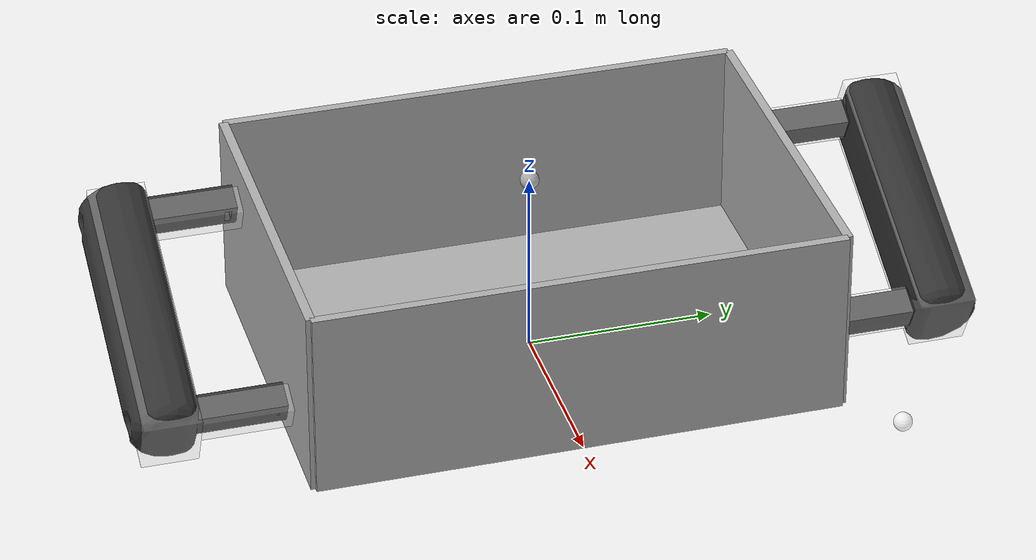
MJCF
<mujoco model="lab_box_handles_v1">
  <default>
    <default class="visual">
      <geom group="1" type="mesh" contype="0" conaffinity="0" density="100"/>
    </default>
    <default class="collision">
      <geom group="0" type="mesh" density="100" solimp="0.95 0.98 0.001" solref="0.004 1" rgba="1 1 1 0.25"/>
    </default>
  </default>
  <asset>
    <mesh file="meshes/handle.obj" name="handle"/>
    <mesh file="meshes/handle_mirror.obj" name="handle_mirror"/>
  </asset>
  <worldbody>
    <body>
      <body name="object">
        <geom name="bottom" type="box" size="0.098425 0.1397 0.0025" pos="0 0 0.0025" rgba="0.7 0.7 0.7 1" class="visual"/>
        <geom name="left_wall" type="box" size="0.098425 0.0025 0.0508" pos="0 -0.1397 0.0508" rgba="0.7 0.7 0.7 1" class="visual"/>
        <geom name="right_wall" type="box" size="0.098425 0.0025 0.0508" pos="0 0.1397 0.0508" rgba="0.7 0.7 0.7 1" class="visual"/>
        <geom name="front_wall" type="box" size="0.0025 0.1397 0.0508" pos="-0.098425 0 0.0508" rgba="0.7 0.7 0.7 1" class="visual"/>
        <geom name="back_wall" type="box" size="0.0025 0.1397 0.0508" pos="0.098425 0 0.0508" rgba="0.7 0.7 0.7 1" class="visual"/>
        <geom name="bottom_coll" type="box" size="0.098425 0.1397 0.0025" pos="0 0 0.0025" rgba="0.7 0.7 0.7 1" class="collision"/>
        <geom name="left_wall_coll" type="box" size="0.098425 0.0025 0.0508" pos="0 -0.1397 0.0508" rgba="0.7 0.7 0.7 1" class="collision"/>
        <geom name="right_wall_coll" type="box" size="0.098425 0.0025 0.0508" pos="0 0.1397 0.0508" rgba="0.7 0.7 0.7 1" class="collision"/>
        <geom name="front_wall_coll" type="box" size="0.0025 0.1397 0.0508" pos="-0.098425 0 0.0508" rgba="0.7 0.7 0.7 1" class="collision"/>
        <geom name="back_wall_coll" type="box" size="0.0025 0.1397 0.0508" pos="0.098425 0 0.0508" rgba="0.7 0.7 0.7 1" class="collision"/>
        <body name="handle_1" pos="0 0.21 0.0508" quat="0.9743701 0 0.2249511 0">
          <geom mesh="handle" class="visual" rgba="0.2 0.2 0.2 1.0"/>
          <geom type="box" pos="-0.059047845301811265 -0.045 0" size="0.008 0.008 0.025" quat="0.5046660647935649 0.504706234998332 -0.4952490447782901 0.49528997874556036" class="collision"/>
          <geom type="box" pos="0.06188433419671608 -0.045 0" size="0.008 0.008 0.025" quat="0.5046660647935649 0.504706234998332 -0.4952490447782901 0.49528997874556036" class="collision"/>
          <geom type="box" pos="0.00145 -0.004 0" size="0.073 0.015 0.018" class="collision"/>
        </body>
        <body name="handle_2" pos="0 -0.21 0.0508" quat="0.9743701 0 0.2249511 0">
          <geom mesh="handle_mirror" class="visual" rgba="0.2 0.2 0.2 1.0"/>
          <geom type="box" pos="-0.059047845301811265 0.045 0" size="0.008 0.008 0.025" quat="0.5046660647935649 0.504706234998332 -0.4952490447782901 0.49528997874556036" class="collision"/>
          <geom type="box" pos="0.06188433419671608 0.045 0" size="0.008 0.008 0.025" quat="0.5046660647935649 0.504706234998332 -0.4952490447782901 0.49528997874556036" class="collision"/>
          <geom type="box" pos="0.00145 0.004 0" size="0.073 0.015 0.018" class="collision"/>
        </body>
      </body>
      <site name="bottom_site" pos="0 0 0.000556" rgba="1 1 1 0.5" size="0.005"/>
      <site name="top_site" pos="0 0 0.101" rgba="1 1 1 0.5" size="0.005"/>
      <site name="horizontal_radius_site" pos="0.122875 0.164772 0" rgba="1 1 1 0.5" size="0.005"/>
    </body>
  </worldbody>
</mujoco>
